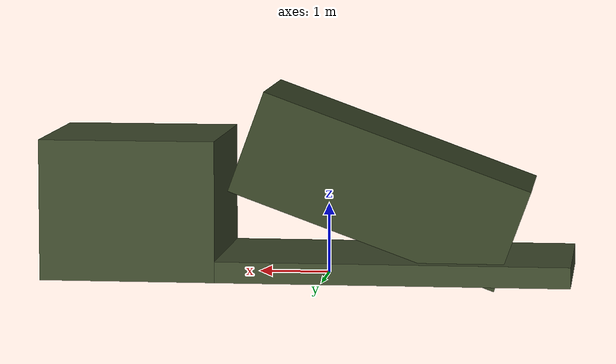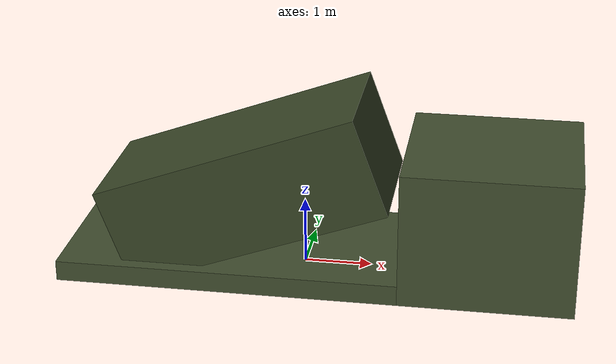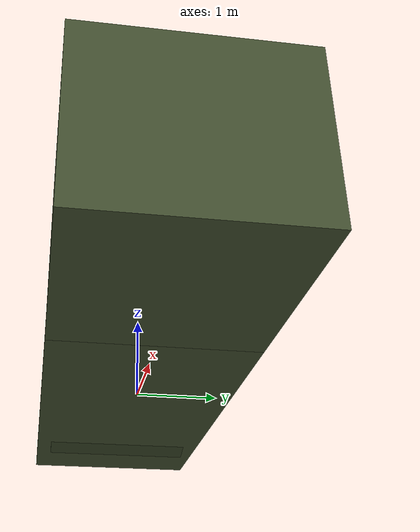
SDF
<?xml version="1.0" ?>
<sdf version="1.9">
  <model name="mlrs_grad">
    <static>true</static>
    <pose>0 0 1.0 0 0 0</pose>
    <link name="body">
      <!-- Truck cab: 2.5 x 2.4 x 2.0m (front) -->
      <visual name="cab">
        <pose>2.75 0 0 0 0 0</pose>
        <geometry><box><size>2.5 2.4 2.0</size></box></geometry>
        <material>
          <ambient>0.2 0.25 0.15 1</ambient>
          <diffuse>0.25 0.3 0.18 1</diffuse>
        </material>
      </visual>
      <!-- Flatbed: 5.0 x 2.4 x 0.3m -->
      <visual name="flatbed">
        <pose>-1.0 0 -0.85 0 0 0</pose>
        <geometry><box><size>5.0 2.4 0.3</size></box></geometry>
        <material>
          <ambient>0.2 0.25 0.15 1</ambient>
          <diffuse>0.25 0.3 0.18 1</diffuse>
        </material>
      </visual>
      <!-- Launcher rack: 4.0 x 2.0 x 1.5m, angled ~20 degrees upward -->
      <visual name="launcher">
        <pose>-0.8 0 0.3 0 -0.35 0</pose>
        <geometry><box><size>4.0 2.0 1.5</size></box></geometry>
        <material>
          <ambient>0.17 0.22 0.12 1</ambient>
          <diffuse>0.22 0.27 0.15 1</diffuse>
        </material>
      </visual>
      <collision name="collision">
        <geometry><box><size>8.0 2.4 2.0</size></box></geometry>
      </collision>
    </link>
  </model>
</sdf>
